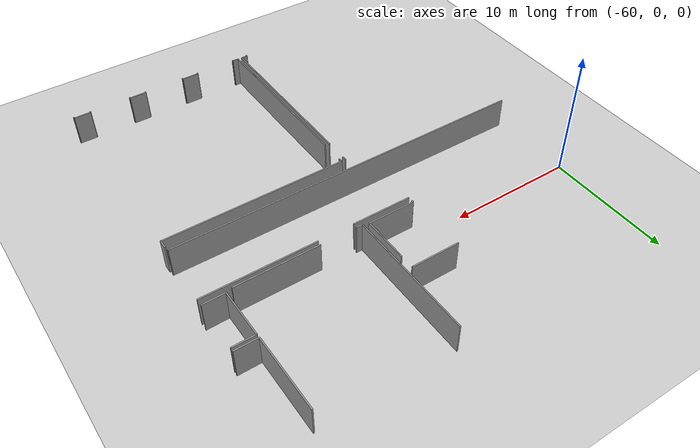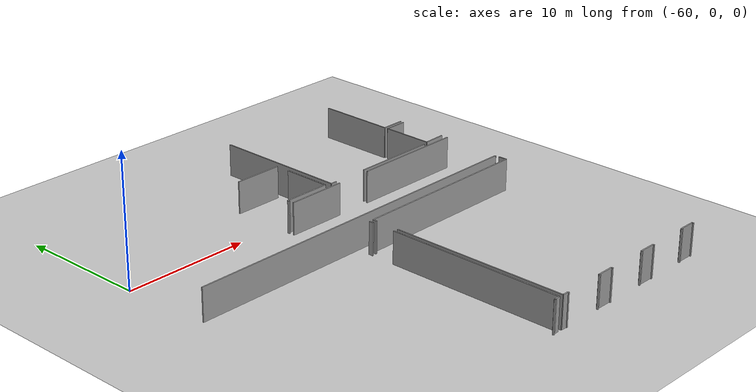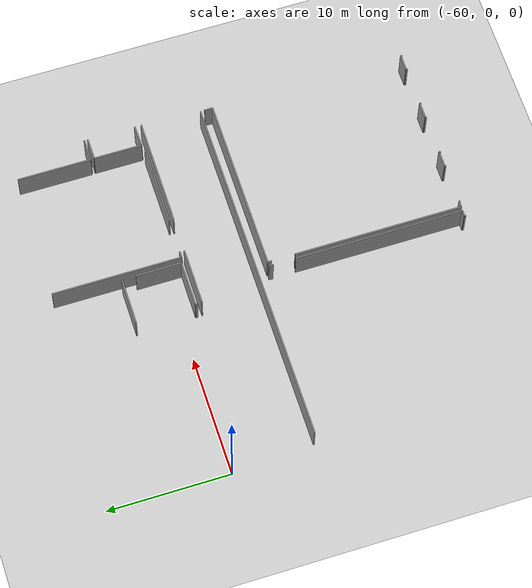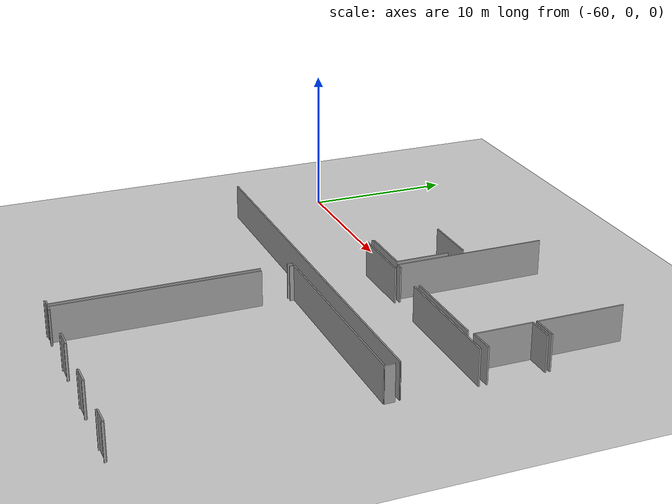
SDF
<sdf version="1.6">
 <world name="default">
  <model name="ground_plane">
   <static>1</static>
   <link name="link">
    <collision name="collision">
     <geometry><plane><normal>0 0 1</normal><size>100 100</size></plane></geometry>
     <surface><friction><ode><mu>100</mu><mu2>50</mu2></ode></friction></surface>
    </collision>
    <visual name="visual">
     <cast_shadows>0</cast_shadows>
     <geometry><plane><normal>0 0 1</normal><size>100 100</size></plane></geometry>
     <material>
      <script><uri>file://media/materials/scripts/gazebo.material</uri><name>Gazebo/Grey</name></script>
     </material>
    </visual>
   </link>
  </model>
  <model name="0510032194_A_40_1_102">
   <static>1</static>
   <link name="Wall_72">
    <collision name="Wall_72_Collision">
     <geometry><box><size>3.85399140629 0.1 2.5</size></box></geometry>
     <pose>1.92699570315 0 1.25 0 0 0</pose>
    </collision>
    <visual name="Wall_72_Visual">
     <pose>1.92699570315 0 1.25 0 0 0</pose>
     <geometry><box><size>3.85399140629 0.1 2.5</size></box></geometry>
     <material>
      <script><uri>file://media/materials/scripts/gazebo.material</uri><name>Gazebo/Grey</name></script>
      <ambient>1 1 1 1</ambient>
     </material>
    </visual>
    <pose>24.8124936439 -20.2635258822 0 0 0 3.1400093848</pose>
   </link>
   <link name="Wall_78">
    <collision name="Wall_78_Collision">
     <geometry><box><size>10.5265432727 0.1 2.5</size></box></geometry>
     <pose>5.26327163633 0 1.25 0 0 0</pose>
    </collision>
    <visual name="Wall_78_Visual">
     <pose>5.26327163633 0 1.25 0 0 0</pose>
     <geometry><box><size>10.5265432727 0.1 2.5</size></box></geometry>
     <material>
      <script><uri>file://media/materials/scripts/gazebo.material</uri><name>Gazebo/Grey</name></script>
      <ambient>1 1 1 1</ambient>
     </material>
    </visual>
    <pose>25.2897132106 -25.2622546527 0 0 0 1.57079632679</pose>
   </link>
   <link name="Wall_82">
    <collision name="Wall_82_Collision">
     <geometry><box><size>6.66416658192 0.1 2.5</size></box></geometry>
     <pose>3.33208329096 0 1.25 0 0 0</pose>
    </collision>
    <visual name="Wall_82_Visual">
     <pose>3.33208329096 0 1.25 0 0 0</pose>
     <geometry><box><size>6.66416658192 0.1 2.5</size></box></geometry>
     <material>
      <script><uri>file://media/materials/scripts/gazebo.material</uri><name>Gazebo/Grey</name></script>
      <ambient>1 1 1 1</ambient>
     </material>
    </visual>
    <pose>35.3054764568 -25.2721702431 0 0 0 3.14159265359</pose>
   </link>
   <link name="Wall_83">
    <collision name="Wall_83_Collision">
     <geometry><box><size>0.506682000599 0.1 2.5</size></box></geometry>
     <pose>0.253341000299 0 1.25 0 0 0</pose>
    </collision>
    <visual name="Wall_83_Visual">
     <pose>0.253341000299 0 1.25 0 0 0</pose>
     <geometry><box><size>0.506682000599 0.1 2.5</size></box></geometry>
     <material>
      <script><uri>file://media/materials/scripts/gazebo.material</uri><name>Gazebo/Grey</name></script>
      <ambient>1 1 1 1</ambient>
     </material>
    </visual>
    <pose>25.7962981796 -25.2721702431 0 0 0 3.12202175241</pose>
   </link>
   <link name="Wall_330">
    <collision name="Wall_330_Collision">
     <geometry><box><size>13.8082223126 0.1 2.5</size></box></geometry>
     <pose>6.90411115631 0 1.25 0 0 0</pose>
    </collision>
    <visual name="Wall_330_Visual">
     <pose>6.90411115631 0 1.25 0 0 0</pose>
     <geometry><box><size>13.8082223126 0.1 2.5</size></box></geometry>
     <material>
      <script><uri>file://media/materials/scripts/gazebo.material</uri><name>Gazebo/Grey</name></script>
      <ambient>1 1 1 1</ambient>
     </material>
    </visual>
    <pose>22.8600122038 -47.5905115428 0 0 0 1.57079632679</pose>
   </link>
   <link name="Wall_331">
    <collision name="Wall_331_Collision">
     <geometry><box><size>0.33153666226 0.1 2.5</size></box></geometry>
     <pose>0.16576833113 0 1.25 0 0 0</pose>
    </collision>
    <visual name="Wall_331_Visual">
     <pose>0.16576833113 0 1.25 0 0 0</pose>
     <geometry><box><size>0.33153666226 0.1 2.5</size></box></geometry>
     <material>
      <script><uri>file://media/materials/scripts/gazebo.material</uri><name>Gazebo/Grey</name></script>
      <ambient>1 1 1 1</ambient>
     </material>
    </visual>
    <pose>22.8600122038 -31.8715041188 0 0 0 1.57079632679</pose>
   </link>
   <link name="Wall_332">
    <collision name="Wall_332_Collision">
     <geometry><box><size>14.4550238991 0.1 2.5</size></box></geometry>
     <pose>7.22751194956 0 1.25 0 0 0</pose>
    </collision>
    <visual name="Wall_332_Visual">
     <pose>7.22751194956 0 1.25 0 0 0</pose>
     <geometry><box><size>14.4550238991 0.1 2.5</size></box></geometry>
     <material>
      <script><uri>file://media/materials/scripts/gazebo.material</uri><name>Gazebo/Grey</name></script>
      <ambient>1 1 1 1</ambient>
     </material>
    </visual>
    <pose>22.8600122038 -31.5399674565 0 0 0 0.0</pose>
   </link>
   <link name="Wall_333">
    <collision name="Wall_333_Collision">
     <geometry><box><size>0.674005898505 0.1 2.5</size></box></geometry>
     <pose>0.337002949253 0 1.25 0 0 0</pose>
    </collision>
    <visual name="Wall_333_Visual">
     <pose>0.337002949253 0 1.25 0 0 0</pose>
     <geometry><box><size>0.674005898505 0.1 2.5</size></box></geometry>
     <material>
      <script><uri>file://media/materials/scripts/gazebo.material</uri><name>Gazebo/Grey</name></script>
      <ambient>1 1 1 1</ambient>
     </material>
    </visual>
    <pose>37.3150361029 -31.5399674565 0 0 0 1.57079632679</pose>
   </link>
   <link name="Wall_342">
    <collision name="Wall_342_Collision">
     <geometry><box><size>0.130682396013 0.1 2.5</size></box></geometry>
     <pose>0.0653411980067 0 1.25 0 0 0</pose>
    </collision>
    <visual name="Wall_342_Visual">
     <pose>0.0653411980067 0 1.25 0 0 0</pose>
     <geometry><box><size>0.130682396013 0.1 2.5</size></box></geometry>
     <material>
      <script><uri>file://media/materials/scripts/gazebo.material</uri><name>Gazebo/Grey</name></script>
      <ambient>1 1 1 1</ambient>
     </material>
    </visual>
    <pose>37.325841554 -47.7002186515 0 0 0 1.57079632679</pose>
   </link>
   <link name="Wall_343">
    <collision name="Wall_343_Collision">
     <geometry><box><size>1.3246211736 0.1 2.5</size></box></geometry>
     <pose>0.6623105868 0 1.25 0 0 0</pose>
    </collision>
    <visual name="Wall_343_Visual">
     <pose>0.6623105868 0 1.25 0 0 0</pose>
     <geometry><box><size>1.3246211736 0.1 2.5</size></box></geometry>
     <material>
      <script><uri>file://media/materials/scripts/gazebo.material</uri><name>Gazebo/Grey</name></script>
      <ambient>1 1 1 1</ambient>
     </material>
    </visual>
    <pose>37.325841554 -47.5695362555 0 0 0 3.14159265359</pose>
   </link>
   <link name="Wall_344">
    <collision name="Wall_344_Collision">
     <geometry><box><size>0.1282670599 0.1 2.5</size></box></geometry>
     <pose>0.0641335299502 0 1.25 0 0 0</pose>
    </collision>
    <visual name="Wall_344_Visual">
     <pose>0.0641335299502 0 1.25 0 0 0</pose>
     <geometry><box><size>0.1282670599 0.1 2.5</size></box></geometry>
     <material>
      <script><uri>file://media/materials/scripts/gazebo.material</uri><name>Gazebo/Grey</name></script>
      <ambient>1 1 1 1</ambient>
     </material>
    </visual>
    <pose>36.0012203804 -47.5695362555 0 0 0 -1.57079632679</pose>
   </link>
   <link name="Wall_345">
    <collision name="Wall_345_Collision">
     <geometry><box><size>0.126614461507 0.1 2.5</size></box></geometry>
     <pose>0.0633072307536 0 1.25 0 0 0</pose>
    </collision>
    <visual name="Wall_345_Visual">
     <pose>0.0633072307536 0 1.25 0 0 0</pose>
     <geometry><box><size>0.126614461507 0.1 2.5</size></box></geometry>
     <material>
      <script><uri>file://media/materials/scripts/gazebo.material</uri><name>Gazebo/Grey</name></script>
      <ambient>1 1 1 1</ambient>
     </material>
    </visual>
    <pose>32.6704718804 -47.6978033154 0 0 0 1.57079632679</pose>
   </link>
   <link name="Wall_346">
    <collision name="Wall_346_Collision">
     <geometry><box><size>1.34267263297 0.1 2.5</size></box></geometry>
     <pose>0.671336316485 0 1.25 0 0 0</pose>
    </collision>
    <visual name="Wall_346_Visual">
     <pose>0.671336316485 0 1.25 0 0 0</pose>
     <geometry><box><size>1.34267263297 0.1 2.5</size></box></geometry>
     <material>
      <script><uri>file://media/materials/scripts/gazebo.material</uri><name>Gazebo/Grey</name></script>
      <ambient>1 1 1 1</ambient>
     </material>
    </visual>
    <pose>32.6704718804 -47.5711888539 0 0 0 3.14159265359</pose>
   </link>
   <link name="Wall_347">
    <collision name="Wall_347_Collision">
     <geometry><box><size>0.120258313841 0.1 2.5</size></box></geometry>
     <pose>0.0601291569206 0 1.25 0 0 0</pose>
    </collision>
    <visual name="Wall_347_Visual">
     <pose>0.0601291569206 0 1.25 0 0 0</pose>
     <geometry><box><size>0.120258313841 0.1 2.5</size></box></geometry>
     <material>
      <script><uri>file://media/materials/scripts/gazebo.material</uri><name>Gazebo/Grey</name></script>
      <ambient>1 1 1 1</ambient>
     </material>
    </visual>
    <pose>31.3277992474 -47.5711888539 0 0 0 -1.57079632679</pose>
   </link>
   <link name="Wall_348">
    <collision name="Wall_348_Collision">
     <geometry><box><size>0.128775551714 0.1 2.5</size></box></geometry>
     <pose>0.0643877758568 0 1.25 0 0 0</pose>
    </collision>
    <visual name="Wall_348_Visual">
     <pose>0.0643877758568 0 1.25 0 0 0</pose>
     <geometry><box><size>0.128775551714 0.1 2.5</size></box></geometry>
     <material>
      <script><uri>file://media/materials/scripts/gazebo.material</uri><name>Gazebo/Grey</name></script>
      <ambient>1 1 1 1</ambient>
     </material>
    </visual>
    <pose>28.0074748297 -47.6914471677 0 0 0 1.57079632679</pose>
   </link>
   <link name="Wall_349">
    <collision name="Wall_349_Collision">
     <geometry><box><size>1.3382233296 0.1 2.5</size></box></geometry>
     <pose>0.669111664802 0 1.25 0 0 0</pose>
    </collision>
    <visual name="Wall_349_Visual">
     <pose>0.669111664802 0 1.25 0 0 0</pose>
     <geometry><box><size>1.3382233296 0.1 2.5</size></box></geometry>
     <material>
      <script><uri>file://media/materials/scripts/gazebo.material</uri><name>Gazebo/Grey</name></script>
      <ambient>1 1 1 1</ambient>
     </material>
    </visual>
    <pose>28.0074748297 -47.562671616 0 0 0 3.14159265359</pose>
   </link>
   <link name="Wall_350">
    <collision name="Wall_350_Collision">
     <geometry><box><size>0.120512559748 0.1 2.5</size></box></geometry>
     <pose>0.0602562798739 0 1.25 0 0 0</pose>
    </collision>
    <visual name="Wall_350_Visual">
     <pose>0.0602562798739 0 1.25 0 0 0</pose>
     <geometry><box><size>0.120512559748 0.1 2.5</size></box></geometry>
     <material>
      <script><uri>file://media/materials/scripts/gazebo.material</uri><name>Gazebo/Grey</name></script>
      <ambient>1 1 1 1</ambient>
     </material>
    </visual>
    <pose>26.6692515001 -47.562671616 0 0 0 -1.57079632679</pose>
   </link>
   <link name="Wall_351">
    <collision name="Wall_351_Collision">
     <geometry><box><size>0.0908929116241 0.1 2.5</size></box></geometry>
     <pose>0.0454464558121 0 1.25 0 0 0</pose>
    </collision>
    <visual name="Wall_351_Visual">
     <pose>0.0454464558121 0 1.25 0 0 0</pose>
     <geometry><box><size>0.0908929116241 0.1 2.5</size></box></geometry>
     <material>
      <script><uri>file://media/materials/scripts/gazebo.material</uri><name>Gazebo/Grey</name></script>
      <ambient>1 1 1 1</ambient>
     </material>
    </visual>
    <pose>23.344350656 -47.6831841757 0 0 0 1.57079632679</pose>
   </link>
   <link name="Wall_352">
    <collision name="Wall_352_Collision">
     <geometry><box><size>0.484341721969 0.1 2.5</size></box></geometry>
     <pose>0.242170860985 0 1.25 0 0 0</pose>
    </collision>
    <visual name="Wall_352_Visual">
     <pose>0.242170860985 0 1.25 0 0 0</pose>
     <geometry><box><size>0.484341721969 0.1 2.5</size></box></geometry>
     <material>
      <script><uri>file://media/materials/scripts/gazebo.material</uri><name>Gazebo/Grey</name></script>
      <ambient>1 1 1 1</ambient>
     </material>
    </visual>
    <pose>23.344350656 -47.5922912641 0 0 0 3.13791812945</pose>
   </link>
   <link name="Wall_353">
    <collision name="Wall_353_Collision">
     <geometry><box><size>3.94398962677 0.1 2.5</size></box></geometry>
     <pose>1.97199481338 0 1.25 0 0 0</pose>
    </collision>
    <visual name="Wall_353_Visual">
     <pose>1.97199481338 0 1.25 0 0 0</pose>
     <geometry><box><size>3.94398962677 0.1 2.5</size></box></geometry>
     <material>
      <script><uri>file://media/materials/scripts/gazebo.material</uri><name>Gazebo/Grey</name></script>
      <ambient>1 1 1 1</ambient>
     </material>
    </visual>
    <pose>35.7837130072 -25.119876945 0 0 0 1.57079632679</pose>
   </link>
   <link name="Wall_354">
    <collision name="Wall_354_Collision">
     <geometry><box><size>1.7764161497 0.1 2.5</size></box></geometry>
     <pose>0.88820807485 0 1.25 0 0 0</pose>
    </collision>
    <visual name="Wall_354_Visual">
     <pose>0.88820807485 0 1.25 0 0 0</pose>
     <geometry><box><size>1.7764161497 0.1 2.5</size></box></geometry>
     <material>
      <script><uri>file://media/materials/scripts/gazebo.material</uri><name>Gazebo/Grey</name></script>
      <ambient>1 1 1 1</ambient>
     </material>
    </visual>
    <pose>35.7837130072 -21.1758873182 0 0 0 0.0</pose>
   </link>
   <link name="Wall_359">
    <collision name="Wall_359_Collision">
     <geometry><box><size>1.78182396208 0.1 2.5</size></box></geometry>
     <pose>0.890911981038 0 1.25 0 0 0</pose>
    </collision>
    <visual name="Wall_359_Visual">
     <pose>0.890911981038 0 1.25 0 0 0</pose>
     <geometry><box><size>1.78182396208 0.1 2.5</size></box></geometry>
     <material>
      <script><uri>file://media/materials/scripts/gazebo.material</uri><name>Gazebo/Grey</name></script>
      <ambient>1 1 1 1</ambient>
     </material>
    </visual>
    <pose>37.5650869521 -25.0798332147 0 0 0 -3.11911731223</pose>
   </link>
   <link name="Wall_360">
    <collision name="Wall_360_Collision">
     <geometry><box><size>6.00770365097 0.1 2.5</size></box></geometry>
     <pose>3.00385182549 0 1.25 0 0 0</pose>
    </collision>
    <visual name="Wall_360_Visual">
     <pose>3.00385182549 0 1.25 0 0 0</pose>
     <geometry><box><size>6.00770365097 0.1 2.5</size></box></geometry>
     <material>
      <script><uri>file://media/materials/scripts/gazebo.material</uri><name>Gazebo/Grey</name></script>
      <ambient>1 1 1 1</ambient>
     </material>
    </visual>
    <pose>35.762610597 -20.8875724601 0 0 0 1.57079632679</pose>
   </link>
   <link name="Wall_364">
    <collision name="Wall_364_Collision">
     <geometry><box><size>1.81086647005 0.1 2.5</size></box></geometry>
     <pose>0.905433235025 0 1.25 0 0 0</pose>
    </collision>
    <visual name="Wall_364_Visual">
     <pose>0.905433235025 0 1.25 0 0 0</pose>
     <geometry><box><size>1.81086647005 0.1 2.5</size></box></geometry>
     <material>
      <script><uri>file://media/materials/scripts/gazebo.material</uri><name>Gazebo/Grey</name></script>
      <ambient>1 1 1 1</ambient>
     </material>
    </visual>
    <pose>37.573477067 -20.8875724601 0 0 0 3.14159265359</pose>
   </link>
   <link name="Wall_372">
    <collision name="Wall_372_Collision">
     <geometry><box><size>3.70944777789 0.1 2.5</size></box></geometry>
     <pose>1.85472388895 0 1.25 0 0 0</pose>
    </collision>
    <visual name="Wall_372_Visual">
     <pose>1.85472388895 0 1.25 0 0 0</pose>
     <geometry><box><size>3.70944777789 0.1 2.5</size></box></geometry>
     <material>
      <script><uri>file://media/materials/scripts/gazebo.material</uri><name>Gazebo/Grey</name></script>
      <ambient>1 1 1 1</ambient>
     </material>
    </visual>
    <pose>24.8238075867 -21.3874199125 0 0 0 -1.57079632679</pose>
   </link>
   <link name="Wall_373">
    <collision name="Wall_373_Collision">
     <geometry><box><size>3.72533814706 0.1 2.5</size></box></geometry>
     <pose>1.86266907353 0 1.25 0 0 0</pose>
    </collision>
    <visual name="Wall_373_Visual">
     <pose>1.86266907353 0 1.25 0 0 0</pose>
     <geometry><box><size>3.72533814706 0.1 2.5</size></box></geometry>
     <material>
      <script><uri>file://media/materials/scripts/gazebo.material</uri><name>Gazebo/Grey</name></script>
      <ambient>1 1 1 1</ambient>
     </material>
    </visual>
    <pose>24.8238075867 -25.0968676904 0 0 0 3.14159265359</pose>
   </link>
   <link name="Wall_374">
    <collision name="Wall_374_Collision">
     <geometry><box><size>0.181785823248 0.1 2.5</size></box></geometry>
     <pose>0.0908929116241 0 1.25 0 0 0</pose>
    </collision>
    <visual name="Wall_374_Visual">
     <pose>0.0908929116241 0 1.25 0 0 0</pose>
     <geometry><box><size>0.181785823248 0.1 2.5</size></box></geometry>
     <material>
      <script><uri>file://media/materials/scripts/gazebo.material</uri><name>Gazebo/Grey</name></script>
      <ambient>1 1 1 1</ambient>
     </material>
    </visual>
    <pose>21.0984694396 -25.0968676904 0 0 0 -1.57079632679</pose>
   </link>
   <link name="Wall_382">
    <collision name="Wall_382_Collision">
     <geometry><box><size>0.370690531882 0.1 2.5</size></box></geometry>
     <pose>0.185345265941 0 1.25 0 0 0</pose>
    </collision>
    <visual name="Wall_382_Visual">
     <pose>0.185345265941 0 1.25 0 0 0</pose>
     <geometry><box><size>0.370690531882 0.1 2.5</size></box></geometry>
     <material>
      <script><uri>file://media/materials/scripts/gazebo.material</uri><name>Gazebo/Grey</name></script>
      <ambient>1 1 1 1</ambient>
     </material>
    </visual>
    <pose>22.5114410658 -31.5300518662 0 0 0 -1.57079632679</pose>
   </link>
   <link name="Wall_383">
    <collision name="Wall_383_Collision">
     <geometry><box><size>13.8298332147 0.1 2.5</size></box></geometry>
     <pose>6.91491660734 0 1.25 0 0 0</pose>
    </collision>
    <visual name="Wall_383_Visual">
     <pose>6.91491660734 0 1.25 0 0 0</pose>
     <geometry><box><size>13.8298332147 0.1 2.5</size></box></geometry>
     <material>
      <script><uri>file://media/materials/scripts/gazebo.material</uri><name>Gazebo/Grey</name></script>
      <ambient>1 1 1 1</ambient>
     </material>
    </visual>
    <pose>22.5114410658 -33.7316942947 0 0 0 -1.57079632679</pose>
   </link>
   <link name="Wall_384">
    <collision name="Wall_384_Collision">
     <geometry><box><size>0.488660632564 0.1 2.5</size></box></geometry>
     <pose>0.244330316282 0 1.25 0 0 0</pose>
    </collision>
    <visual name="Wall_384_Visual">
     <pose>0.244330316282 0 1.25 0 0 0</pose>
     <geometry><box><size>0.488660632564 0.1 2.5</size></box></geometry>
     <material>
      <script><uri>file://media/materials/scripts/gazebo.material</uri><name>Gazebo/Grey</name></script>
      <ambient>1 1 1 1</ambient>
     </material>
    </visual>
    <pose>22.5114410658 -47.5615275094 0 0 0 3.14159265359</pose>
   </link>
   <link name="Wall_385">
    <collision name="Wall_385_Collision">
     <geometry><box><size>0.124326248347 0.1 2.5</size></box></geometry>
     <pose>0.0621631241737 0 1.25 0 0 0</pose>
    </collision>
    <visual name="Wall_385_Visual">
     <pose>0.0621631241737 0 1.25 0 0 0</pose>
     <geometry><box><size>0.124326248347 0.1 2.5</size></box></geometry>
     <material>
      <script><uri>file://media/materials/scripts/gazebo.material</uri><name>Gazebo/Grey</name></script>
      <ambient>1 1 1 1</ambient>
     </material>
    </visual>
    <pose>22.0227804332 -47.5615275094 0 0 0 -1.57079632679</pose>
   </link>
   <link name="Wall_401">
    <collision name="Wall_401_Collision">
     <geometry><box><size>4.66541238686 0.1 2.5</size></box></geometry>
     <pose>2.33270619343 0 1.25 0 0 0</pose>
    </collision>
    <visual name="Wall_401_Visual">
     <pose>2.33270619343 0 1.25 0 0 0</pose>
     <geometry><box><size>4.66541238686 0.1 2.5</size></box></geometry>
     <material>
      <script><uri>file://media/materials/scripts/gazebo.material</uri><name>Gazebo/Grey</name></script>
      <ambient>1 1 1 1</ambient>
     </material>
    </visual>
    <pose>21.094655751 -25.6259534221 0 0 0 0.0</pose>
   </link>
   <link name="Wall_402">
    <collision name="Wall_402_Collision">
     <geometry><box><size>8.94691345469 0.1 2.5</size></box></geometry>
     <pose>4.47345672735 0 1.25 0 0 0</pose>
    </collision>
    <visual name="Wall_402_Visual">
     <pose>4.47345672735 0 1.25 0 0 0</pose>
     <geometry><box><size>8.94691345469 0.1 2.5</size></box></geometry>
     <material>
      <script><uri>file://media/materials/scripts/gazebo.material</uri><name>Gazebo/Grey</name></script>
      <ambient>1 1 1 1</ambient>
     </material>
    </visual>
    <pose>28.6203345876 -25.6259534221 0 0 0 0.0</pose>
   </link>
   <link name="Wall_406">
    <collision name="Wall_406_Collision">
     <geometry><box><size>0.0419505745958 0.1 2.5</size></box></geometry>
     <pose>0.0209752872979 0 1.25 0 0 0</pose>
    </collision>
    <visual name="Wall_406_Visual">
     <pose>0.0209752872979 0 1.25 0 0 0</pose>
     <geometry><box><size>0.0419505745958 0.1 2.5</size></box></geometry>
     <material>
      <script><uri>file://media/materials/scripts/gazebo.material</uri><name>Gazebo/Grey</name></script>
      <ambient>1 1 1 1</ambient>
     </material>
    </visual>
    <pose>37.2646954134 -30.5670954948 0 0 0 1.57079632679</pose>
   </link>
   <link name="Wall_407">
    <collision name="Wall_407_Collision">
     <geometry><box><size>29.136580901 0.1 2.5</size></box></geometry>
     <pose>14.5682904505 0 1.25 0 0 0</pose>
    </collision>
    <visual name="Wall_407_Visual">
     <pose>14.5682904505 0 1.25 0 0 0</pose>
     <geometry><box><size>29.136580901 0.1 2.5</size></box></geometry>
     <material>
      <script><uri>file://media/materials/scripts/gazebo.material</uri><name>Gazebo/Grey</name></script>
      <ambient>1 1 1 1</ambient>
     </material>
    </visual>
    <pose>37.2646954134 -30.5251449202 0 0 0 3.14159265359</pose>
   </link>
   <pose>-67.7 23.8502186515 0 0 0 0</pose>
  </model>
 </world>
</sdf>
